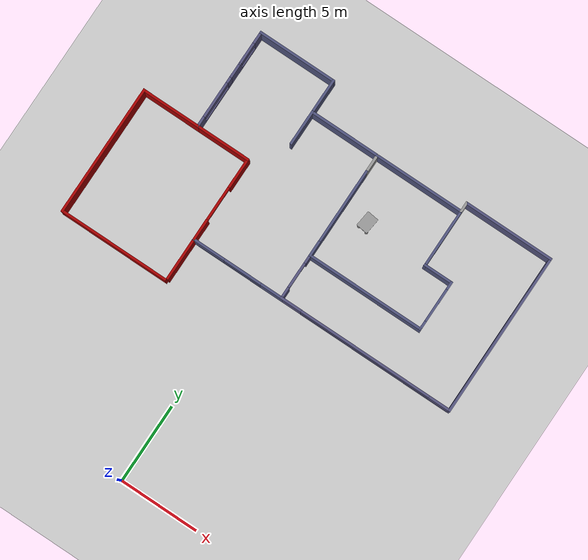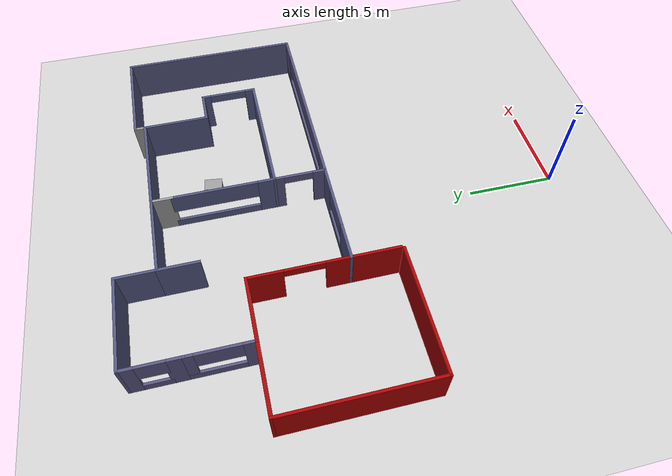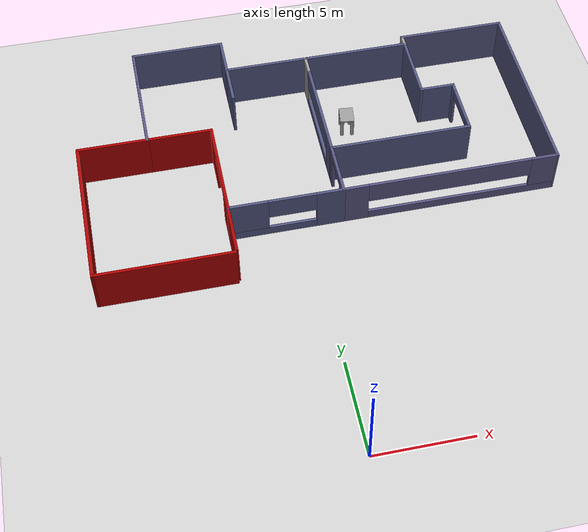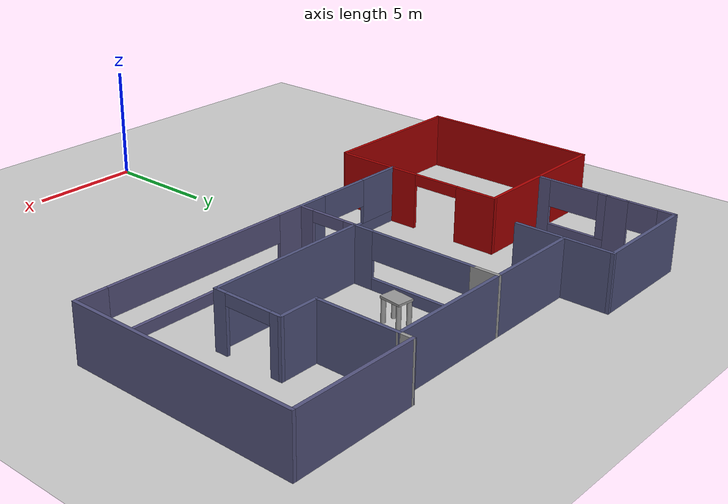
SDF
<sdf version="1.6">
 <world name="default">
  <model name="ground_plane">
   <static>1</static>
   <link name="link">
    <collision name="collision">
     <geometry><plane><normal>0 0 1</normal><size>100 100</size></plane></geometry>
     <surface>
      <contact><collide_bitmask>65535</collide_bitmask></contact>
      <friction><ode><mu>100</mu><mu2>50</mu2></ode></friction>
     </surface>
    </collision>
    <visual name="visual">
     <cast_shadows>0</cast_shadows>
     <geometry><plane><normal>0 0 1</normal><size>100 100</size></plane></geometry>
     <material>
      <script><uri>file://media/materials/scripts/gazebo.material</uri><name>Gazebo/Grey</name></script>
     </material>
    </visual>
   </link>
  </model>
  <model name="Apartment_02">
   <pose>0.99714 17.8132 0 0 -0 0</pose>
   <link name="Wall_141">
    <collision name="Wall_141_Collision">
     <geometry><box><size>7.5 0.15 2.5</size></box></geometry>
     <pose>0 0 1.25 0 -0 0</pose>
    </collision>
    <visual name="Wall_141_Visual">
     <pose>0 0 1.25 0 -0 0</pose>
     <geometry><box><size>7.5 0.15 2.5</size></box></geometry>
     <material>
      <script><uri>file://media/materials/scripts/gazebo.material</uri><name>Gazebo/Grey</name></script>
      <ambient>0.317647 0.333333 0.498039 1</ambient>
     </material>
     <meta><layer>0</layer></meta>
    </visual>
    <pose>4.47349 -1.6 0 0 -0 3.14159</pose>
   </link>
   <link name="Wall_142">
    <pose>0.798496 -3.025 0 0 0 -1.5708</pose>
    <visual name="Wall_142_Visual_0">
     <pose>-1.19377 0 1.25 0 -0 0</pose>
     <geometry><box><size>0.612455 0.15 2.5</size></box></geometry>
     <material>
      <script><uri>file://media/materials/scripts/gazebo.material</uri><name>Gazebo/Grey</name></script>
      <ambient>0.341176 0.329412 0.498039 1</ambient>
     </material>
     <meta><layer>0</layer></meta>
    </visual>
    <collision name="Wall_142_Collision_0">
     <geometry><box><size>0.612455 0.15 2.5</size></box></geometry>
     <pose>-1.19377 0 1.25 0 -0 0</pose>
    </collision>
    <visual name="Wall_142_Visual_1">
     <pose>1.11465 0 1.25 0 -0 0</pose>
     <geometry><box><size>0.770704 0.15 2.5</size></box></geometry>
     <material>
      <script><uri>file://media/materials/scripts/gazebo.material</uri><name>Gazebo/Grey</name></script>
      <ambient>0.341176 0.329412 0.498039 1</ambient>
     </material>
     <meta><layer>0</layer></meta>
    </visual>
    <collision name="Wall_142_Collision_1">
     <geometry><box><size>0.770704 0.15 2.5</size></box></geometry>
     <pose>1.11465 0 1.25 0 -0 0</pose>
    </collision>
    <visual name="Wall_142_Visual_2">
     <pose>-0.079125 0 2.25 0 -0 0</pose>
     <geometry><box><size>1.61684 0.15 0.5</size></box></geometry>
     <material>
      <script><uri>file://media/materials/scripts/gazebo.material</uri><name>Gazebo/Grey</name></script>
      <ambient>0.341176 0.329412 0.498039 1</ambient>
     </material>
     <meta><layer>0</layer></meta>
    </visual>
    <collision name="Wall_142_Collision_2">
     <geometry><box><size>1.61684 0.15 0.5</size></box></geometry>
     <pose>-0.079125 0 2.25 0 -0 0</pose>
    </collision>
   </link>
   <link name="Wall_143">
    <pose>-2.1265 -4.45 0 0 -0 3.14159</pose>
    <visual name="Wall_143_Visual_0">
     <pose>-2.26881 0 1.25 0 -0 0</pose>
     <geometry><box><size>1.46237 0.15 2.5</size></box></geometry>
     <material>
      <script><uri>file://media/materials/scripts/gazebo.material</uri><name>Gazebo/Grey</name></script>
      <ambient>0.317647 0.333333 0.498039 1</ambient>
     </material>
     <meta><layer>0</layer></meta>
    </visual>
    <collision name="Wall_143_Collision_0">
     <geometry><box><size>1.46237 0.15 2.5</size></box></geometry>
     <pose>-2.26881 0 1.25 0 -0 0</pose>
    </collision>
    <visual name="Wall_143_Visual_1">
     <pose>0.731186 0 0.25 0 -0 0</pose>
     <geometry><box><size>4.53763 0.15 0.5</size></box></geometry>
     <material>
      <script><uri>file://media/materials/scripts/gazebo.material</uri><name>Gazebo/Grey</name></script>
      <ambient>0.317647 0.333333 0.498039 1</ambient>
     </material>
     <meta><layer>0</layer></meta>
    </visual>
    <collision name="Wall_143_Collision_1">
     <geometry><box><size>4.53763 0.15 0.5</size></box></geometry>
     <pose>0.731186 0 0.25 0 -0 0</pose>
    </collision>
    <visual name="Wall_143_Visual_2">
     <pose>1.95114 0 1.5 0 -0 0</pose>
     <geometry><box><size>2.09773 0.15 2</size></box></geometry>
     <material>
      <script><uri>file://media/materials/scripts/gazebo.material</uri><name>Gazebo/Grey</name></script>
      <ambient>0.317647 0.333333 0.498039 1</ambient>
     </material>
     <meta><layer>0</layer></meta>
    </visual>
    <collision name="Wall_143_Collision_2">
     <geometry><box><size>2.09773 0.15 2</size></box></geometry>
     <pose>1.95114 0 1.5 0 -0 0</pose>
    </collision>
    <visual name="Wall_143_Visual_3">
     <pose>-0.317677 0 1.9 0 -0 0</pose>
     <geometry><box><size>2.4399 0.15 1.2</size></box></geometry>
     <material>
      <script><uri>file://media/materials/scripts/gazebo.material</uri><name>Gazebo/Grey</name></script>
      <ambient>0.317647 0.333333 0.498039 1</ambient>
     </material>
     <meta><layer>0</layer></meta>
    </visual>
    <collision name="Wall_143_Collision_3">
     <geometry><box><size>2.4399 0.15 1.2</size></box></geometry>
     <pose>-0.317677 0 1.9 0 -0 0</pose>
    </collision>
   </link>
   <link name="Wall_144">
    <pose>-5.0515 -1.775 0 0 -0 1.5708</pose>
    <visual name="Wall_144_Visual_0">
     <pose>-2.05414 0 1.25 0 -0 0</pose>
     <geometry><box><size>1.39172 0.15 2.5</size></box></geometry>
     <material>
      <script><uri>file://media/materials/scripts/gazebo.material</uri><name>Gazebo/Grey</name></script>
      <ambient>0.666667 0 0 1</ambient>
     </material>
     <meta><layer>0</layer></meta>
    </visual>
    <collision name="Wall_144_Collision_0">
     <geometry><box><size>1.39172 0.15 2.5</size></box></geometry>
     <pose>-2.05414 0 1.25 0 -0 0</pose>
    </collision>
    <visual name="Wall_144_Visual_1">
     <pose>1.76942 0 1.25 0 -0 0</pose>
     <geometry><box><size>1.96116 0.15 2.5</size></box></geometry>
     <material>
      <script><uri>file://media/materials/scripts/gazebo.material</uri><name>Gazebo/Grey</name></script>
      <ambient>0.666667 0 0 1</ambient>
     </material>
     <meta><layer>0</layer></meta>
    </visual>
    <collision name="Wall_144_Collision_1">
     <geometry><box><size>1.96116 0.15 2.5</size></box></geometry>
     <pose>1.76942 0 1.25 0 -0 0</pose>
    </collision>
    <visual name="Wall_144_Visual_2">
     <pose>-0.284718 0 2.25 0 -0 0</pose>
     <geometry><box><size>2.14712 0.15 0.5</size></box></geometry>
     <material>
      <script><uri>file://media/materials/scripts/gazebo.material</uri><name>Gazebo/Grey</name></script>
      <ambient>0.666667 0 0 1</ambient>
     </material>
     <meta><layer>0</layer></meta>
    </visual>
    <collision name="Wall_144_Collision_2">
     <geometry><box><size>2.14712 0.15 0.5</size></box></geometry>
     <pose>-0.284718 0 2.25 0 -0 0</pose>
    </collision>
   </link>
   <link name="Wall_145">
    <collision name="Wall_145_Collision">
     <geometry><box><size>3.5 0.15 2.5</size></box></geometry>
     <pose>0 0 1.25 0 -0 0</pose>
    </collision>
    <visual name="Wall_145_Visual">
     <pose>0 0 1.25 0 -0 0</pose>
     <geometry><box><size>3.5 0.15 2.5</size></box></geometry>
     <material>
      <script><uri>file://media/materials/scripts/gazebo.material</uri><name>Gazebo/Grey</name></script>
      <ambient>0.666667 0 0 1</ambient>
     </material>
     <meta><layer>0</layer></meta>
    </visual>
    <pose>-6.72651 0.9 0 0 -0 3.14159</pose>
   </link>
   <link name="Wall_146">
    <pose>-8.4015 2.575 0 0 -0 1.5708</pose>
    <visual name="Wall_146_Visual_0">
     <pose>-1.3991 0 1.25 0 -0 0</pose>
     <geometry><box><size>0.701801 0.15 2.5</size></box></geometry>
     <material>
      <script><uri>file://media/materials/scripts/gazebo.material</uri><name>Gazebo/Grey</name></script>
      <ambient>0.341176 0.329412 0.498039 1</ambient>
     </material>
     <meta><layer>0</layer></meta>
    </visual>
    <collision name="Wall_146_Collision_0">
     <geometry><box><size>0.701801 0.15 2.5</size></box></geometry>
     <pose>-1.3991 0 1.25 0 -0 0</pose>
    </collision>
    <visual name="Wall_146_Visual_1">
     <pose>0.3509 0 0.25 0 -0 0</pose>
     <geometry><box><size>2.7982 0.15 0.5</size></box></geometry>
     <material>
      <script><uri>file://media/materials/scripts/gazebo.material</uri><name>Gazebo/Grey</name></script>
      <ambient>0.341176 0.329412 0.498039 1</ambient>
     </material>
     <meta><layer>0</layer></meta>
    </visual>
    <collision name="Wall_146_Collision_1">
     <geometry><box><size>2.7982 0.15 0.5</size></box></geometry>
     <pose>0.3509 0 0.25 0 -0 0</pose>
    </collision>
    <visual name="Wall_146_Visual_2">
     <pose>1.4915 0 1.5 0 -0 0</pose>
     <geometry><box><size>0.516999 0.15 2</size></box></geometry>
     <material>
      <script><uri>file://media/materials/scripts/gazebo.material</uri><name>Gazebo/Grey</name></script>
      <ambient>0.341176 0.329412 0.498039 1</ambient>
     </material>
     <meta><layer>0</layer></meta>
    </visual>
    <collision name="Wall_146_Collision_2">
     <geometry><box><size>0.516999 0.15 2</size></box></geometry>
     <pose>1.4915 0 1.5 0 -0 0</pose>
    </collision>
    <visual name="Wall_146_Visual_3">
     <pose>0.092401 0 1.9 0 -0 0</pose>
     <geometry><box><size>2.2812 0.15 1.2</size></box></geometry>
     <material>
      <script><uri>file://media/materials/scripts/gazebo.material</uri><name>Gazebo/Grey</name></script>
      <ambient>0.341176 0.329412 0.498039 1</ambient>
     </material>
     <meta><layer>0</layer></meta>
    </visual>
    <collision name="Wall_146_Collision_3">
     <geometry><box><size>2.2812 0.15 1.2</size></box></geometry>
     <pose>0.092401 0 1.9 0 -0 0</pose>
    </collision>
   </link>
   <link name="Wall_147">
    <collision name="Wall_147_Collision">
     <geometry><box><size>1 0.15 2.5</size></box></geometry>
     <pose>0 0 1.25 0 -0 0</pose>
    </collision>
    <visual name="Wall_147_Visual">
     <pose>0 0 1.25 0 -0 0</pose>
     <geometry><box><size>1 0.15 2.5</size></box></geometry>
     <material>
      <script><uri>file://media/materials/scripts/gazebo.material</uri><name>Gazebo/Grey</name></script>
      <ambient>0.341176 0.329412 0.498039 1</ambient>
     </material>
     <meta><layer>0</layer></meta>
    </visual>
    <pose>-8.4015 4.675 0 0 -0 1.5708</pose>
   </link>
   <link name="Wall_151">
    <pose>0.798496 1.2 0 0 -0 1.5708</pose>
    <visual name="Wall_151_Visual_0">
     <pose>-2.36504 0 1.25 0 -0 0</pose>
     <geometry><box><size>1.01992 0.15 2.5</size></box></geometry>
     <material>
      <script><uri>file://media/materials/scripts/gazebo.material</uri><name>Gazebo/Grey</name></script>
      <ambient>0.317647 0.333333 0.498039 1</ambient>
     </material>
     <meta><layer>0</layer></meta>
    </visual>
    <collision name="Wall_151_Collision_0">
     <geometry><box><size>1.01992 0.15 2.5</size></box></geometry>
     <pose>-2.36504 0 1.25 0 -0 0</pose>
    </collision>
    <visual name="Wall_151_Visual_1">
     <pose>0.509958 0 0.25 0 -0 0</pose>
     <geometry><box><size>4.73008 0.15 0.5</size></box></geometry>
     <material>
      <script><uri>file://media/materials/scripts/gazebo.material</uri><name>Gazebo/Grey</name></script>
      <ambient>0.317647 0.333333 0.498039 1</ambient>
     </material>
     <meta><layer>0</layer></meta>
    </visual>
    <collision name="Wall_151_Collision_1">
     <geometry><box><size>4.73008 0.15 0.5</size></box></geometry>
     <pose>0.509958 0 0.25 0 -0 0</pose>
    </collision>
    <visual name="Wall_151_Visual_2">
     <pose>0.509958 0 1.9 0 -0 0</pose>
     <geometry><box><size>4.73008 0.15 1.2</size></box></geometry>
     <material>
      <script><uri>file://media/materials/scripts/gazebo.material</uri><name>Gazebo/Grey</name></script>
      <ambient>0.317647 0.333333 0.498039 1</ambient>
     </material>
     <meta><layer>0</layer></meta>
    </visual>
    <collision name="Wall_151_Collision_2">
     <geometry><box><size>4.73008 0.15 1.2</size></box></geometry>
     <pose>0.509958 0 1.9 0 -0 0</pose>
    </collision>
   </link>
   <link name="Wall_155">
    <pose>6.34849 -4.45 0 0 -0 0</pose>
    <visual name="Wall_155_Visual_0">
     <pose>-4.93549 0 1.25 0 -0 0</pose>
     <geometry><box><size>1.37903 0.15 2.5</size></box></geometry>
     <material>
      <script><uri>file://media/materials/scripts/gazebo.material</uri><name>Gazebo/Grey</name></script>
      <ambient>0.341176 0.329412 0.498039 1</ambient>
     </material>
     <meta><layer>0</layer></meta>
    </visual>
    <collision name="Wall_155_Collision_0">
     <geometry><box><size>1.37903 0.15 2.5</size></box></geometry>
     <pose>-4.93549 0 1.25 0 -0 0</pose>
    </collision>
    <visual name="Wall_155_Visual_1">
     <pose>0.689514 0 0.25 0 -0 0</pose>
     <geometry><box><size>9.87097 0.15 0.5</size></box></geometry>
     <material>
      <script><uri>file://media/materials/scripts/gazebo.material</uri><name>Gazebo/Grey</name></script>
      <ambient>0.341176 0.329412 0.498039 1</ambient>
     </material>
     <meta><layer>0</layer></meta>
    </visual>
    <collision name="Wall_155_Collision_1">
     <geometry><box><size>9.87097 0.15 0.5</size></box></geometry>
     <pose>0.689514 0 0.25 0 -0 0</pose>
    </collision>
    <visual name="Wall_155_Visual_2">
     <pose>4.95121 0 1.5 0 -0 0</pose>
     <geometry><box><size>1.34757 0.15 2</size></box></geometry>
     <material>
      <script><uri>file://media/materials/scripts/gazebo.material</uri><name>Gazebo/Grey</name></script>
      <ambient>0.341176 0.329412 0.498039 1</ambient>
     </material>
     <meta><layer>0</layer></meta>
    </visual>
    <collision name="Wall_155_Collision_2">
     <geometry><box><size>1.34757 0.15 2</size></box></geometry>
     <pose>4.95121 0 1.5 0 -0 0</pose>
    </collision>
    <visual name="Wall_155_Visual_3">
     <pose>0.015727 0 1.9 0 -0 0</pose>
     <geometry><box><size>8.5234 0.15 1.2</size></box></geometry>
     <material>
      <script><uri>file://media/materials/scripts/gazebo.material</uri><name>Gazebo/Grey</name></script>
      <ambient>0.341176 0.329412 0.498039 1</ambient>
     </material>
     <meta><layer>0</layer></meta>
    </visual>
    <collision name="Wall_155_Collision_3">
     <geometry><box><size>8.5234 0.15 1.2</size></box></geometry>
     <pose>0.015727 0 1.9 0 -0 0</pose>
    </collision>
   </link>
   <link name="Wall_157">
    <collision name="Wall_157_Collision">
     <geometry><box><size>5.75 0.15 2.5</size></box></geometry>
     <pose>0 0 1.25 0 -0 0</pose>
    </collision>
    <visual name="Wall_157_Visual">
     <pose>0 0 1.25 0 -0 0</pose>
     <geometry><box><size>5.75 0.15 2.5</size></box></geometry>
     <material>
      <script><uri>file://media/materials/scripts/gazebo.material</uri><name>Gazebo/Grey</name></script>
      <ambient>0.333333 0.333333 0.498039 1</ambient>
     </material>
     <meta><layer>0</layer></meta>
    </visual>
    <pose>9.2015 5.65865 0 0 -0 3.14159</pose>
   </link>
   <link name="Wall_159">
    <collision name="Wall_159_Collision">
     <geometry><box><size>4.5 0.15 2.5</size></box></geometry>
     <pose>0 0 1.25 0 -0 0</pose>
    </collision>
    <visual name="Wall_159_Visual">
     <pose>0 0 1.25 0 -0 0</pose>
     <geometry><box><size>4.5 0.15 2.5</size></box></geometry>
     <material>
      <script><uri>file://media/materials/scripts/gazebo.material</uri><name>Gazebo/Grey</name></script>
      <ambient>0.317647 0.333333 0.498039 1</ambient>
     </material>
     <meta><layer>0</layer></meta>
    </visual>
    <pose>-1.3765 5.1 0 0 -0 0</pose>
   </link>
   <link name="Wall_160">
    <collision name="Wall_160_Collision">
     <geometry><box><size>1.25 0.15 2.5</size></box></geometry>
     <pose>0 0 1.25 0 -0 0</pose>
    </collision>
    <visual name="Wall_160_Visual">
     <pose>0 0 1.25 0 -0 0</pose>
     <geometry><box><size>1.25 0.15 2.5</size></box></geometry>
     <material>
      <script><uri>file://media/materials/scripts/gazebo.material</uri><name>Gazebo/Grey</name></script>
      <ambient>1 1 1 1</ambient>
     </material>
     <meta><layer>0</layer></meta>
    </visual>
    <pose>0.798496 4.55 0 0 0 -1.5708</pose>
   </link>
   <link name="Wall_162">
    <collision name="Wall_162_Collision">
     <geometry><box><size>5.75 0.15 2.5</size></box></geometry>
     <pose>0 0 1.25 0 -0 0</pose>
    </collision>
    <visual name="Wall_162_Visual">
     <pose>0 0 1.25 0 -0 0</pose>
     <geometry><box><size>5.75 0.15 2.5</size></box></geometry>
     <material>
      <script><uri>file://media/materials/scripts/gazebo.material</uri><name>Gazebo/Grey</name></script>
      <ambient>0.317647 0.333333 0.498039 1</ambient>
     </material>
     <meta><layer>0</layer></meta>
    </visual>
    <pose>3.5985 5.1 0 0 -0 0</pose>
   </link>
   <link name="Wall_165">
    <collision name="Wall_165_Collision">
     <geometry><box><size>0.709396 0.15 2.5</size></box></geometry>
     <pose>0 0 1.25 0 -0 0</pose>
    </collision>
    <visual name="Wall_165_Visual">
     <pose>0 0 1.25 0 -0 0</pose>
     <geometry><box><size>0.709396 0.15 2.5</size></box></geometry>
     <material>
      <script><uri>file://media/materials/scripts/gazebo.material</uri><name>Gazebo/Grey</name></script>
      <ambient>1 1 1 1</ambient>
     </material>
     <meta><layer>0</layer></meta>
    </visual>
    <pose>6.39568 5.37932 0 0 0 -1.56071</pose>
   </link>
   <link name="Wall_167">
    <collision name="Wall_167_Collision">
     <geometry><box><size>10.25 0.15 2.5</size></box></geometry>
     <pose>0 0 1.25 0 -0 0</pose>
    </collision>
    <visual name="Wall_167_Visual">
     <pose>0 0 1.25 0 -0 0</pose>
     <geometry><box><size>10.25 0.15 2.5</size></box></geometry>
     <material>
      <script><uri>file://media/materials/scripts/gazebo.material</uri><name>Gazebo/Grey</name></script>
      <ambient>0.333333 0.333333 0.498039 1</ambient>
     </material>
     <meta><layer>0</layer></meta>
    </visual>
    <pose>12.0015 0.608647 0 0 0 -1.5708</pose>
   </link>
   <link name="Wall_169">
    <collision name="Wall_169_Collision">
     <geometry><box><size>3.75 0.15 2.5</size></box></geometry>
     <pose>0 0 1.25 0 -0 0</pose>
    </collision>
    <visual name="Wall_169_Visual">
     <pose>0 0 1.25 0 -0 0</pose>
     <geometry><box><size>3.75 0.15 2.5</size></box></geometry>
     <material>
      <script><uri>file://media/materials/scripts/gazebo.material</uri><name>Gazebo/Grey</name></script>
      <ambient>0.317647 0.333333 0.498039 1</ambient>
     </material>
     <meta><layer>0</layer></meta>
    </visual>
    <pose>6.39849 3.3 0 0 0 -1.5708</pose>
   </link>
   <link name="Wall_172">
    <collision name="Wall_172_Collision">
     <geometry><box><size>2.25 0.15 2.5</size></box></geometry>
     <pose>0 0 1.25 0 -0 0</pose>
    </collision>
    <visual name="Wall_172_Visual">
     <pose>0 0 1.25 0 -0 0</pose>
     <geometry><box><size>2.25 0.15 2.5</size></box></geometry>
     <material>
      <script><uri>file://media/materials/scripts/gazebo.material</uri><name>Gazebo/Grey</name></script>
      <ambient>0.317647 0.333333 0.498039 1</ambient>
     </material>
     <meta><layer>0</layer></meta>
    </visual>
    <pose>-3.55151 6.15 0 0 -0 1.5708</pose>
   </link>
   <link name="Wall_173">
    <collision name="Wall_173_Collision">
     <geometry><box><size>5 0.15 2.5</size></box></geometry>
     <pose>0 0 1.25 0 -0 0</pose>
    </collision>
    <visual name="Wall_173_Visual">
     <pose>0 0 1.25 0 -0 0</pose>
     <geometry><box><size>5 0.15 2.5</size></box></geometry>
     <material>
      <script><uri>file://media/materials/scripts/gazebo.material</uri><name>Gazebo/Grey</name></script>
      <ambient>0.317647 0.333333 0.498039 1</ambient>
     </material>
     <meta><layer>0</layer></meta>
    </visual>
    <pose>-5.97651 7.2 0 0 -0 3.14159</pose>
   </link>
   <link name="Wall_174">
    <pose>-8.4015 6.15 0 0 0 -1.5708</pose>
    <visual name="Wall_174_Visual_0">
     <pose>-0.727225 0 1.25 0 -0 0</pose>
     <geometry><box><size>0.795549 0.15 2.5</size></box></geometry>
     <material>
      <script><uri>file://media/materials/scripts/gazebo.material</uri><name>Gazebo/Grey</name></script>
      <ambient>0.341176 0.329412 0.498039 1</ambient>
     </material>
     <meta><layer>0</layer></meta>
    </visual>
    <collision name="Wall_174_Collision_0">
     <geometry><box><size>0.795549 0.15 2.5</size></box></geometry>
     <pose>-0.727225 0 1.25 0 -0 0</pose>
    </collision>
    <visual name="Wall_174_Visual_1">
     <pose>0.397775 0 0.25 0 -0 0</pose>
     <geometry><box><size>1.45445 0.15 0.5</size></box></geometry>
     <material>
      <script><uri>file://media/materials/scripts/gazebo.material</uri><name>Gazebo/Grey</name></script>
      <ambient>0.341176 0.329412 0.498039 1</ambient>
     </material>
     <meta><layer>0</layer></meta>
    </visual>
    <collision name="Wall_174_Collision_1">
     <geometry><box><size>1.45445 0.15 0.5</size></box></geometry>
     <pose>0.397775 0 0.25 0 -0 0</pose>
    </collision>
    <visual name="Wall_174_Visual_2">
     <pose>0.397775 0 1.9 0 -0 0</pose>
     <geometry><box><size>1.45445 0.15 1.2</size></box></geometry>
     <material>
      <script><uri>file://media/materials/scripts/gazebo.material</uri><name>Gazebo/Grey</name></script>
      <ambient>0.341176 0.329412 0.498039 1</ambient>
     </material>
     <meta><layer>0</layer></meta>
    </visual>
    <collision name="Wall_174_Collision_2">
     <geometry><box><size>1.45445 0.15 1.2</size></box></geometry>
     <pose>0.397775 0 1.9 0 -0 0</pose>
    </collision>
   </link>
   <link name="Wall_176">
    <collision name="Wall_176_Collision">
     <geometry><box><size>2.25 0.15 2.5</size></box></geometry>
     <pose>0 0 1.25 0 -0 0</pose>
    </collision>
    <visual name="Wall_176_Visual">
     <pose>0 0 1.25 0 -0 0</pose>
     <geometry><box><size>2.25 0.15 2.5</size></box></geometry>
     <material>
      <script><uri>file://media/materials/scripts/gazebo.material</uri><name>Gazebo/Grey</name></script>
      <ambient>0.317647 0.333333 0.498039 1</ambient>
     </material>
     <meta><layer>0</layer></meta>
    </visual>
    <pose>-3.55151 4.05 0 0 0 -1.5708</pose>
   </link>
   <link name="Wall_178">
    <pose>8.1485 -0.05 0 0 -0 1.5708</pose>
    <visual name="Wall_178_Visual_0">
     <pose>-1.32404 0 1.25 0 -0 0</pose>
     <geometry><box><size>0.601916 0.15 2.5</size></box></geometry>
     <material>
      <script><uri>file://media/materials/scripts/gazebo.material</uri><name>Gazebo/Grey</name></script>
      <ambient>0.317647 0.333333 0.498039 1</ambient>
     </material>
     <meta><layer>0</layer></meta>
    </visual>
    <collision name="Wall_178_Collision_0">
     <geometry><box><size>0.601916 0.15 2.5</size></box></geometry>
     <pose>-1.32404 0 1.25 0 -0 0</pose>
    </collision>
    <visual name="Wall_178_Visual_1">
     <pose>1.36046 0 1.25 0 -0 0</pose>
     <geometry><box><size>0.529084 0.15 2.5</size></box></geometry>
     <material>
      <script><uri>file://media/materials/scripts/gazebo.material</uri><name>Gazebo/Grey</name></script>
      <ambient>0.317647 0.333333 0.498039 1</ambient>
     </material>
     <meta><layer>0</layer></meta>
    </visual>
    <collision name="Wall_178_Collision_1">
     <geometry><box><size>0.529084 0.15 2.5</size></box></geometry>
     <pose>1.36046 0 1.25 0 -0 0</pose>
    </collision>
    <visual name="Wall_178_Visual_2">
     <pose>0.036416 0 2.25 0 -0 0</pose>
     <geometry><box><size>2.119 0.15 0.5</size></box></geometry>
     <material>
      <script><uri>file://media/materials/scripts/gazebo.material</uri><name>Gazebo/Grey</name></script>
      <ambient>0.317647 0.333333 0.498039 1</ambient>
     </material>
     <meta><layer>0</layer></meta>
    </visual>
    <collision name="Wall_178_Collision_2">
     <geometry><box><size>2.119 0.15 0.5</size></box></geometry>
     <pose>0.036416 0 2.25 0 -0 0</pose>
    </collision>
   </link>
   <link name="Wall_179">
    <collision name="Wall_179_Collision">
     <geometry><box><size>1.9 0.15 2.5</size></box></geometry>
     <pose>0 0 1.25 0 -0 0</pose>
    </collision>
    <visual name="Wall_179_Visual">
     <pose>0 0 1.25 0 -0 0</pose>
     <geometry><box><size>1.9 0.15 2.5</size></box></geometry>
     <material>
      <script><uri>file://media/materials/scripts/gazebo.material</uri><name>Gazebo/Grey</name></script>
      <ambient>0.317647 0.333333 0.498039 1</ambient>
     </material>
     <meta><layer>0</layer></meta>
    </visual>
    <pose>7.2735 1.5 0 0 -0 3.14159</pose>
   </link>
   <link name="Wall_181">
    <collision name="Wall_181_Collision">
     <geometry><box><size>3.75 0.15 2.5</size></box></geometry>
     <pose>0 0 1.25 0 -0 0</pose>
    </collision>
    <visual name="Wall_181_Visual">
     <pose>0 0 1.25 0 -0 0</pose>
     <geometry><box><size>3.75 0.15 2.5</size></box></geometry>
     <material>
      <script><uri>file://media/materials/scripts/gazebo.material</uri><name>Gazebo/Grey</name></script>
      <ambient>0.666667 0 0 1</ambient>
     </material>
     <meta><layer>0</layer></meta>
    </visual>
    <pose>-10.2015 0.9 0 0 -0 3.14159</pose>
   </link>
   <link name="Wall_182">
    <collision name="Wall_182_Collision">
     <geometry><box><size>8.25 0.15 2.5</size></box></geometry>
     <pose>0 0 1.25 0 -0 0</pose>
    </collision>
    <visual name="Wall_182_Visual">
     <pose>0 0 1.25 0 -0 0</pose>
     <geometry><box><size>8.25 0.15 2.5</size></box></geometry>
     <material>
      <script><uri>file://media/materials/scripts/gazebo.material</uri><name>Gazebo/Grey</name></script>
      <ambient>0.666667 0 0 1</ambient>
     </material>
     <meta><layer>0</layer></meta>
    </visual>
    <pose>-12.0015 -3.15 0 0 0 -1.5708</pose>
   </link>
   <link name="Wall_183">
    <collision name="Wall_183_Collision">
     <geometry><box><size>7 0.15 2.5</size></box></geometry>
     <pose>0 0 1.25 0 -0 0</pose>
    </collision>
    <visual name="Wall_183_Visual">
     <pose>0 0 1.25 0 -0 0</pose>
     <geometry><box><size>7 0.15 2.5</size></box></geometry>
     <material>
      <script><uri>file://media/materials/scripts/gazebo.material</uri><name>Gazebo/Grey</name></script>
      <ambient>0.666667 0 0 1</ambient>
     </material>
     <meta><layer>0</layer></meta>
    </visual>
    <pose>-8.5765 -7.2 0 0 -0 0</pose>
   </link>
   <link name="Wall_185">
    <collision name="Wall_185_Collision">
     <geometry><box><size>2.75 0.15 2.5</size></box></geometry>
     <pose>0 0 1.25 0 -0 0</pose>
    </collision>
    <visual name="Wall_185_Visual">
     <pose>0 0 1.25 0 -0 0</pose>
     <geometry><box><size>2.75 0.15 2.5</size></box></geometry>
     <material>
      <script><uri>file://media/materials/scripts/gazebo.material</uri><name>Gazebo/Grey</name></script>
      <ambient>0.666667 0 0 1</ambient>
     </material>
     <meta><layer>0</layer></meta>
    </visual>
    <pose>-5.0515 -5.75 0 0 0 -1.5708</pose>
   </link>
   <static>1</static>
  </model>
  <model name="Walker_clone_0">
   <link name="link_2">
    <pose>0.008 0.008 0.440001 0 -0 0</pose>
    <inertial>
     <mass>1</mass>
     <inertia>
      <ixx>0.166667</ixx>
      <ixy>0</ixy>
      <ixz>0</ixz>
      <iyy>0.166667</iyy>
      <iyz>0</iyz>
      <izz>0.166667</izz>
     </inertia>
    </inertial>
    <visual name="visual">
     <geometry><box><size>0.75 1 0.1</size></box></geometry>
     <material>
      <lighting>1</lighting>
      <script><uri>file://media/materials/scripts/gazebo.material</uri><name>Gazebo/Grey</name></script>
      <shader type="pixel"><normal_map>__default__</normal_map></shader>
      <ambient>0.3 0.3 0.3 1</ambient>
      <diffuse>0.7 0.7 0.7 1</diffuse>
      <specular>0.01 0.01 0.01 1</specular>
      <emissive>0 0 0 1</emissive>
     </material>
    </visual>
    <collision name="collision">
     <geometry><box><size>0.75 1 0.1</size></box></geometry>
     <surface>
      <friction>
       <ode><mu>1</mu><mu2>1</mu2><fdir1>0 0 0</fdir1><slip1>0</slip1><slip2>0</slip2></ode>
       <torsional>
        <coefficient>1</coefficient>
        <patch_radius>0</patch_radius>
        <surface_radius>0</surface_radius>
        <use_patch_radius>1</use_patch_radius>
        <ode><slip>0</slip></ode>
       </torsional>
      </friction>
      <bounce><restitution_coefficient>0</restitution_coefficient><threshold>1e+06</threshold></bounce>
      <contact>
       <collide_without_contact>0</collide_without_contact>
       <collide_without_contact_bitmask>1</collide_without_contact_bitmask>
       <collide_bitmask>1</collide_bitmask>
       <ode>
        <soft_cfm>0</soft_cfm>
        <soft_erp>0.2</soft_erp>
        <kp>1e+13</kp>
        <kd>1</kd>
        <max_vel>0.01</max_vel>
        <min_depth>0</min_depth>
       </ode>
       <bullet>
        <split_impulse>1</split_impulse>
        <split_impulse_penetration_threshold>-0.01</split_impulse_penetration_threshold>
        <soft_cfm>0</soft_cfm>
        <soft_erp>0.2</soft_erp>
        <kp>1e+13</kp>
        <kd>1</kd>
       </bullet>
      </contact>
     </surface>
    </collision>
   </link>
   <link name="link_3">
    <pose>0.243 0.368 -0.109999 0 -0 0</pose>
    <inertial>
     <mass>1</mass>
     <inertia><ixx>0.145833</ixx><ixy>0</ixy><ixz>0</ixz><iyy>0.145833</iyy><iyz>0</iyz><izz>0.125</izz></inertia>
    </inertial>
    <visual name="visual">
     <geometry><cylinder><radius>0.1</radius><length>1</length></cylinder></geometry>
     <material>
      <lighting>1</lighting>
      <script><uri>file://media/materials/scripts/gazebo.material</uri><name>Gazebo/Grey</name></script>
      <shader type="pixel"><normal_map>__default__</normal_map></shader>
      <ambient>0.3 0.3 0.3 1</ambient>
      <diffuse>0.7 0.7 0.7 1</diffuse>
      <specular>0.01 0.01 0.01 1</specular>
      <emissive>0 0 0 1</emissive>
     </material>
    </visual>
    <collision name="collision">
     <geometry><cylinder><radius>0.1</radius><length>1</length></cylinder></geometry>
     <surface>
      <friction>
       <ode><mu>1</mu><mu2>1</mu2><fdir1>0 0 0</fdir1><slip1>0</slip1><slip2>0</slip2></ode>
       <torsional>
        <coefficient>1</coefficient>
        <patch_radius>0</patch_radius>
        <surface_radius>0</surface_radius>
        <use_patch_radius>1</use_patch_radius>
        <ode><slip>0</slip></ode>
       </torsional>
      </friction>
      <bounce><restitution_coefficient>0</restitution_coefficient><threshold>1e+06</threshold></bounce>
      <contact>
       <collide_without_contact>0</collide_without_contact>
       <collide_without_contact_bitmask>1</collide_without_contact_bitmask>
       <collide_bitmask>1</collide_bitmask>
       <ode>
        <soft_cfm>0</soft_cfm>
        <soft_erp>0.2</soft_erp>
        <kp>1e+13</kp>
        <kd>1</kd>
        <max_vel>0.01</max_vel>
        <min_depth>0</min_depth>
       </ode>
       <bullet>
        <split_impulse>1</split_impulse>
        <split_impulse_penetration_threshold>-0.01</split_impulse_penetration_threshold>
        <soft_cfm>0</soft_cfm>
        <soft_erp>0.2</soft_erp>
        <kp>1e+13</kp>
        <kd>1</kd>
       </bullet>
      </contact>
     </surface>
    </collision>
   </link>
   <link name="link_3_clone">
    <pose>0.283 -0.392001 -0.109999 0 -0 0</pose>
    <inertial>
     <mass>1</mass>
     <inertia><ixx>0.145833</ixx><ixy>0</ixy><ixz>0</ixz><iyy>0.145833</iyy><iyz>0</iyz><izz>0.125</izz></inertia>
    </inertial>
    <visual name="visual">
     <geometry><cylinder><radius>0.1</radius><length>1</length></cylinder></geometry>
     <material>
      <lighting>1</lighting>
      <script><uri>file://media/materials/scripts/gazebo.material</uri><name>Gazebo/Grey</name></script>
      <shader type="pixel"><normal_map>__default__</normal_map></shader>
      <ambient>0.3 0.3 0.3 1</ambient>
      <diffuse>0.7 0.7 0.7 1</diffuse>
      <specular>0.01 0.01 0.01 1</specular>
      <emissive>0 0 0 1</emissive>
     </material>
    </visual>
    <collision name="collision">
     <geometry><cylinder><radius>0.1</radius><length>1</length></cylinder></geometry>
     <surface>
      <friction>
       <ode><mu>1</mu><mu2>1</mu2><fdir1>0 0 0</fdir1><slip1>0</slip1><slip2>0</slip2></ode>
       <torsional>
        <coefficient>1</coefficient>
        <patch_radius>0</patch_radius>
        <surface_radius>0</surface_radius>
        <use_patch_radius>1</use_patch_radius>
        <ode><slip>0</slip></ode>
       </torsional>
      </friction>
      <bounce><restitution_coefficient>0</restitution_coefficient><threshold>1e+06</threshold></bounce>
      <contact>
       <collide_without_contact>0</collide_without_contact>
       <collide_without_contact_bitmask>1</collide_without_contact_bitmask>
       <collide_bitmask>1</collide_bitmask>
       <ode>
        <soft_cfm>0</soft_cfm>
        <soft_erp>0.2</soft_erp>
        <kp>1e+13</kp>
        <kd>1</kd>
        <max_vel>0.01</max_vel>
        <min_depth>0</min_depth>
       </ode>
       <bullet>
        <split_impulse>1</split_impulse>
        <split_impulse_penetration_threshold>-0.01</split_impulse_penetration_threshold>
        <soft_cfm>0</soft_cfm>
        <soft_erp>0.2</soft_erp>
        <kp>1e+13</kp>
        <kd>1</kd>
       </bullet>
      </contact>
     </surface>
    </collision>
   </link>
   <link name="link_3_clone_0">
    <pose>-0.267 0.407999 -0.109999 0 -0 0</pose>
    <inertial>
     <mass>1</mass>
     <inertia><ixx>0.145833</ixx><ixy>0</ixy><ixz>0</ixz><iyy>0.145833</iyy><iyz>0</iyz><izz>0.125</izz></inertia>
    </inertial>
    <visual name="visual">
     <geometry><cylinder><radius>0.1</radius><length>1</length></cylinder></geometry>
     <material>
      <lighting>1</lighting>
      <script><uri>file://media/materials/scripts/gazebo.material</uri><name>Gazebo/Grey</name></script>
      <shader type="pixel"><normal_map>__default__</normal_map></shader>
      <ambient>0.3 0.3 0.3 1</ambient>
      <diffuse>0.7 0.7 0.7 1</diffuse>
      <specular>0.01 0.01 0.01 1</specular>
      <emissive>0 0 0 1</emissive>
     </material>
    </visual>
    <collision name="collision">
     <geometry><cylinder><radius>0.1</radius><length>1</length></cylinder></geometry>
     <surface>
      <friction>
       <ode><mu>1</mu><mu2>1</mu2><fdir1>0 0 0</fdir1><slip1>0</slip1><slip2>0</slip2></ode>
       <torsional>
        <coefficient>1</coefficient>
        <patch_radius>0</patch_radius>
        <surface_radius>0</surface_radius>
        <use_patch_radius>1</use_patch_radius>
        <ode><slip>0</slip></ode>
       </torsional>
      </friction>
      <bounce><restitution_coefficient>0</restitution_coefficient><threshold>1e+06</threshold></bounce>
      <contact>
       <collide_without_contact>0</collide_without_contact>
       <collide_without_contact_bitmask>1</collide_without_contact_bitmask>
       <collide_bitmask>1</collide_bitmask>
       <ode>
        <soft_cfm>0</soft_cfm>
        <soft_erp>0.2</soft_erp>
        <kp>1e+13</kp>
        <kd>1</kd>
        <max_vel>0.01</max_vel>
        <min_depth>0</min_depth>
       </ode>
       <bullet>
        <split_impulse>1</split_impulse>
        <split_impulse_penetration_threshold>-0.01</split_impulse_penetration_threshold>
        <soft_cfm>0</soft_cfm>
        <soft_erp>0.2</soft_erp>
        <kp>1e+13</kp>
        <kd>1</kd>
       </bullet>
      </contact>
     </surface>
    </collision>
   </link>
   <link name="link_3_clone_1">
    <pose>-0.267 -0.392001 -0.109999 0 -0 0</pose>
    <inertial>
     <mass>1</mass>
     <inertia><ixx>0.145833</ixx><ixy>0</ixy><ixz>0</ixz><iyy>0.145833</iyy><iyz>0</iyz><izz>0.125</izz></inertia>
    </inertial>
    <visual name="visual">
     <geometry><cylinder><radius>0.1</radius><length>1</length></cylinder></geometry>
     <material>
      <lighting>1</lighting>
      <script><uri>file://media/materials/scripts/gazebo.material</uri><name>Gazebo/Grey</name></script>
      <shader type="pixel"><normal_map>__default__</normal_map></shader>
      <ambient>0.3 0.3 0.3 1</ambient>
      <diffuse>0.7 0.7 0.7 1</diffuse>
      <specular>0.01 0.01 0.01 1</specular>
      <emissive>0 0 0 1</emissive>
     </material>
    </visual>
    <collision name="collision">
     <geometry><cylinder><radius>0.1</radius><length>1</length></cylinder></geometry>
     <surface>
      <friction>
       <ode><mu>1</mu><mu2>1</mu2><fdir1>0 0 0</fdir1><slip1>0</slip1><slip2>0</slip2></ode>
       <torsional>
        <coefficient>1</coefficient>
        <patch_radius>0</patch_radius>
        <surface_radius>0</surface_radius>
        <use_patch_radius>1</use_patch_radius>
        <ode><slip>0</slip></ode>
       </torsional>
      </friction>
      <bounce><restitution_coefficient>0</restitution_coefficient><threshold>1e+06</threshold></bounce>
      <contact>
       <collide_without_contact>0</collide_without_contact>
       <collide_without_contact_bitmask>1</collide_without_contact_bitmask>
       <collide_bitmask>1</collide_bitmask>
       <ode>
        <soft_cfm>0</soft_cfm>
        <soft_erp>0.2</soft_erp>
        <kp>1e+13</kp>
        <kd>1</kd>
        <max_vel>0.01</max_vel>
        <min_depth>0</min_depth>
       </ode>
       <bullet>
        <split_impulse>1</split_impulse>
        <split_impulse_penetration_threshold>-0.01</split_impulse_penetration_threshold>
        <soft_cfm>0</soft_cfm>
        <soft_erp>0.2</soft_erp>
        <kp>1e+13</kp>
        <kd>1</kd>
       </bullet>
      </contact>
     </surface>
    </collision>
   </link>
   <joint name="link_2_JOINT_6" type="revolute">
    <parent>link_2</parent>
    <child>link_3</child>
    <axis>
     <xyz>1 0 0</xyz>
     <use_parent_model_frame>0</use_parent_model_frame>
     <limit>
      <lower>-1.79769e+308</lower>
      <upper>1.79769e+308</upper>
      <effort>-1</effort>
      <velocity>-1</velocity>
     </limit>
     <dynamics>
      <spring_reference>0</spring_reference>
      <spring_stiffness>0</spring_stiffness>
      <damping>0</damping>
     </dynamics>
    </axis>
    <physics>
     <ode><limit><cfm>0</cfm><erp>0.2</erp></limit><suspension><cfm>0</cfm><erp>0.2</erp></suspension></ode>
    </physics>
   </joint>
   <joint name="link_2_JOINT_7" type="revolute">
    <parent>link_2</parent>
    <child>link_3_clone_0</child>
    <axis>
     <xyz>1 0 0</xyz>
     <use_parent_model_frame>0</use_parent_model_frame>
     <limit>
      <lower>-1.79769e+308</lower>
      <upper>1.79769e+308</upper>
      <effort>-1</effort>
      <velocity>-1</velocity>
     </limit>
     <dynamics>
      <spring_reference>0</spring_reference>
      <spring_stiffness>0</spring_stiffness>
      <damping>0</damping>
     </dynamics>
    </axis>
    <physics>
     <ode><limit><cfm>0</cfm><erp>0.2</erp></limit><suspension><cfm>0</cfm><erp>0.2</erp></suspension></ode>
    </physics>
   </joint>
   <joint name="link_2_JOINT_8" type="revolute">
    <parent>link_2</parent>
    <child>link_3_clone</child>
    <axis>
     <xyz>1 0 0</xyz>
     <use_parent_model_frame>0</use_parent_model_frame>
     <limit>
      <lower>-1.79769e+308</lower>
      <upper>1.79769e+308</upper>
      <effort>-1</effort>
      <velocity>-1</velocity>
     </limit>
     <dynamics>
      <spring_reference>0</spring_reference>
      <spring_stiffness>0</spring_stiffness>
      <damping>0</damping>
     </dynamics>
    </axis>
    <physics>
     <ode><limit><cfm>0</cfm><erp>0.2</erp></limit><suspension><cfm>0</cfm><erp>0.2</erp></suspension></ode>
    </physics>
   </joint>
   <joint name="link_2_JOINT_9" type="revolute">
    <parent>link_2</parent>
    <child>link_3_clone_1</child>
    <axis>
     <xyz>1 0 0</xyz>
     <use_parent_model_frame>0</use_parent_model_frame>
     <limit>
      <lower>-1.79769e+308</lower>
      <upper>1.79769e+308</upper>
      <effort>-1</effort>
      <velocity>-1</velocity>
     </limit>
     <dynamics>
      <spring_reference>0</spring_reference>
      <spring_stiffness>0</spring_stiffness>
      <damping>0</damping>
     </dynamics>
    </axis>
    <physics>
     <ode><limit><cfm>0</cfm><erp>0.2</erp></limit><suspension><cfm>0</cfm><erp>0.2</erp></suspension></ode>
    </physics>
   </joint>
   <static>0</static>
   <pose>3.36611 19.5994 0.609999 0 -1e-06 -0.118473</pose>
  </model>
 </world>
</sdf>
